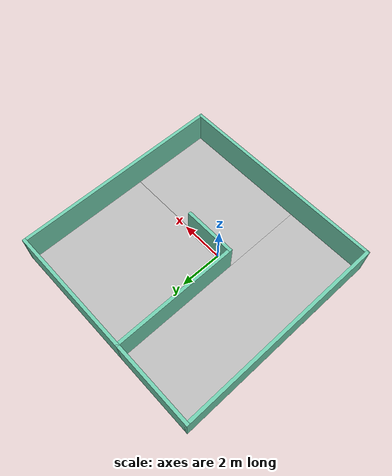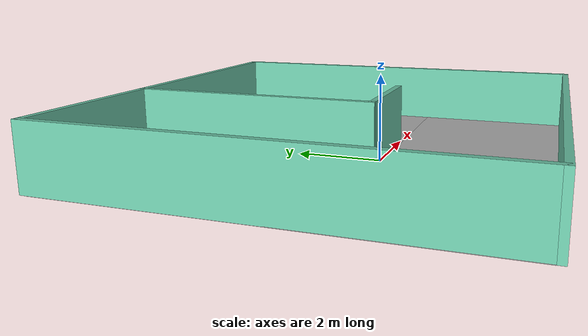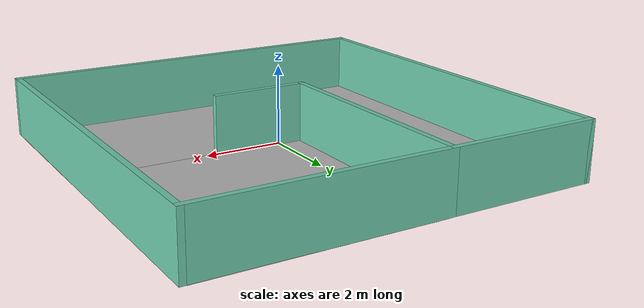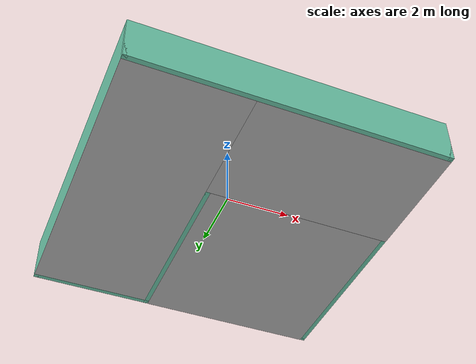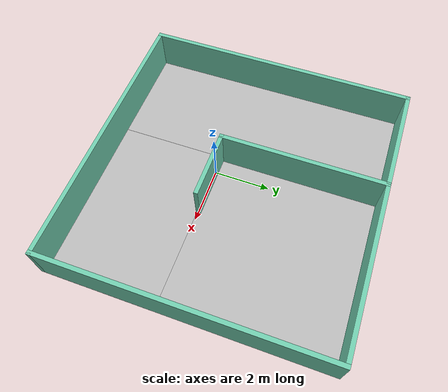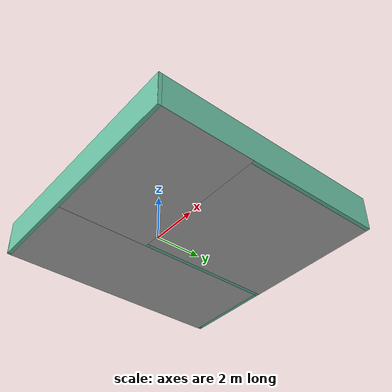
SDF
<?xml version='1.0'?>
<sdf version='1.7'>
  <model name='test_room_v1'>
    <pose>0.429 0.941 0 0 -0 0</pose>
    <link name='Wall_0'>
      <collision name='Wall_0_Collision'>
        <geometry>
          <box>
            <size>10 0.15 1.5</size>
          </box>
        </geometry>
        <pose>0 0 0.75 0 -0 0</pose>
      </collision>
      <visual name='Wall_0_Visual'>
        <pose>0 0 0.75 0 -0 0</pose>
        <geometry>
          <box>
            <size>10 0.15 1.5</size>
          </box>
        </geometry>
        <material>
          <script>
            <uri>file://media/materials/scripts/gazebo.material</uri>
            <name>Gazebo/Grey</name>
          </script>
          <ambient>0.435294 0.796078 0.67451 1</ambient>
        </material>
        <meta>
          <layer>0</layer>
        </meta>
      </visual>
      <pose>-4.925 0 0 0 -0 1.5708</pose>
    </link>
    <link name='Wall_12'>
      <collision name='Wall_12_Collision'>
        <geometry>
          <box>
            <size>4 0.15 1.5</size>
          </box>
        </geometry>
        <pose>0 0 0.75 0 -0 0</pose>
      </collision>
      <visual name='Wall_12_Visual'>
        <pose>0 0 0.75 0 -0 0</pose>
        <geometry>
          <box>
            <size>4 0.15 1.5</size>
          </box>
        </geometry>
        <material>
          <script>
            <uri>file://media/materials/scripts/gazebo.material</uri>
            <name>Gazebo/Grey</name>
          </script>
          <ambient>0.435294 0.796078 0.67451 1</ambient>
        </material>
        <meta>
          <layer>0</layer>
        </meta>
      </visual>
      <pose>-3 4.925 0 0 -0 0</pose>
    </link>
    <link name='Wall_14'>
      <collision name='Wall_14_Collision'>
        <geometry>
          <box>
            <size>6 0.15 1.5</size>
          </box>
        </geometry>
        <pose>0 0 0.75 0 -0 0</pose>
      </collision>
      <visual name='Wall_14_Visual'>
        <pose>0 0 0.75 0 -0 0</pose>
        <geometry>
          <box>
            <size>6 0.15 1.5</size>
          </box>
        </geometry>
        <material>
          <script>
            <uri>file://media/materials/scripts/gazebo.material</uri>
            <name>Gazebo/Grey</name>
          </script>
          <ambient>0.435294 0.796078 0.67451 1</ambient>
        </material>
        <meta>
          <layer>0</layer>
        </meta>
      </visual>
      <pose>-1.075 2 0 0 -0 -1.5708</pose>
    </link>
    <link name='Wall_16'>
      <collision name='Wall_16_Collision'>
        <geometry>
          <box>
            <size>6.15 0.15 1.5</size>
          </box>
        </geometry>
        <pose>0 0 0.75 0 -0 0</pose>
      </collision>
      <visual name='Wall_16_Visual'>
        <pose>0 0 0.75 0 -0 0</pose>
        <geometry>
          <box>
            <size>6.15 0.15 1.5</size>
          </box>
        </geometry>
        <material>
          <script>
            <uri>file://media/materials/scripts/gazebo.material</uri>
            <name>Gazebo/Grey</name>
          </script>
          <ambient>0.435294 0.796078 0.67451 1</ambient>
        </material>
        <meta>
          <layer>0</layer>
        </meta>
      </visual>
      <pose>1.925 4.925 0 0 -0 3.14159</pose>
    </link>
    <link name='Wall_18'>
      <collision name='Wall_18_Collision'>
        <geometry>
          <box>
            <size>2.5 0.15 1.5</size>
          </box>
        </geometry>
        <pose>0 0 0.75 0 -0 0</pose>
      </collision>
      <visual name='Wall_18_Visual'>
        <pose>0 0 0.75 0 -0 0</pose>
        <geometry>
          <box>
            <size>2.5 0.15 1.5</size>
          </box>
        </geometry>
        <material>
          <script>
            <uri>file://media/materials/scripts/gazebo.material</uri>
            <name>Gazebo/Grey</name>
          </script>
          <ambient>0.435294 0.796078 0.67451 1</ambient>
        </material>
        <meta>
          <layer>0</layer>
        </meta>
      </visual>
      <pose>0.1 -0.925 0 0 -0 0</pose>
    </link>
    <link name='Wall_4'>
      <collision name='Wall_4_Collision'>
        <geometry>
          <box>
            <size>10 0.15 1.5</size>
          </box>
        </geometry>
        <pose>0 0 0.75 0 -0 0</pose>
      </collision>
      <visual name='Wall_4_Visual'>
        <pose>0 0 0.75 0 -0 0</pose>
        <geometry>
          <box>
            <size>10 0.15 1.5</size>
          </box>
        </geometry>
        <material>
          <script>
            <uri>file://media/materials/scripts/gazebo.material</uri>
            <name>Gazebo/Grey</name>
          </script>
          <ambient>0.435294 0.796078 0.67451 1</ambient>
        </material>
        <meta>
          <layer>0</layer>
        </meta>
      </visual>
      <pose>4.925 0 0 0 -0 -1.5708</pose>
    </link>
    <link name='Wall_6'>
      <collision name='Wall_6_Collision'>
        <geometry>
          <box>
            <size>10 0.15 1.5</size>
          </box>
        </geometry>
        <pose>0 0 0.75 0 -0 0</pose>
      </collision>
      <visual name='Wall_6_Visual'>
        <pose>0 0 0.75 0 -0 0</pose>
        <geometry>
          <box>
            <size>10 0.15 1.5</size>
          </box>
        </geometry>
        <material>
          <script>
            <uri>file://media/materials/scripts/gazebo.material</uri>
            <name>Gazebo/Grey</name>
          </script>
          <ambient>0.435294 0.796078 0.67451 1</ambient>
        </material>
        <meta>
          <layer>0</layer>
        </meta>
      </visual>
      <pose>-0 -4.925 0 0 -0 0</pose>
    </link>
    <static>1</static>

    <link name='image_1'>
      <pose>-3.075 0.000 0.001 0 0 0</pose>
      <collision name='image_1_Col'>
        <geometry><box><size>3.850 9.700 0.01</size></box></geometry>
      </collision>
      <visual name='image_1_Vis'>
        <geometry><box><size>3.850 9.700 0.01</size></box></geometry>
        <material>
          <script>
            <uri>model://test_room_v3/materials/scripts</uri>
            <uri>model://test_room_v3/materials/textures/</uri>
            <name>image_1_Mat</name>
          </script>
        </material>
      </visual>
    </link>

    <link name='image_2'>
      <pose>1.925 2.000 0.001 0 0 0</pose>
      <collision name='image_2_Col'>
        <geometry><box><size>5.850 6.000 0.01</size></box></geometry>
      </collision>
      <visual name='image_2_Vis'>
        <geometry><box><size>5.850 6.000 0.01</size></box></geometry>
        <material>
          <script>
            <uri>model://test_room_v3/materials/scripts</uri>
            <uri>model://test_room_v3/materials/textures/</uri>
            <name>image_2_Mat</name>
          </script>
        </material>
      </visual>
    </link>

    <link name='image_3'>
      <pose>1.925 -2.925 0.001 0 0 0</pose>
      <collision name='image_3_Col'>
        <geometry><box><size>6.150 3.850 0.01</size></box></geometry>
      </collision>
      <visual name='image_3_Vis'>
        <geometry><box><size>6.150 3.850 0.01</size></box></geometry>
        <material>
          <script>
            <uri>model://test_room_v3/materials/scripts</uri>
            <uri>model://test_room_v3/materials/textures/</uri>
            <name>image_3_Mat</name>
          </script>
        </material>
      </visual>
    </link>

</model>
</sdf>
